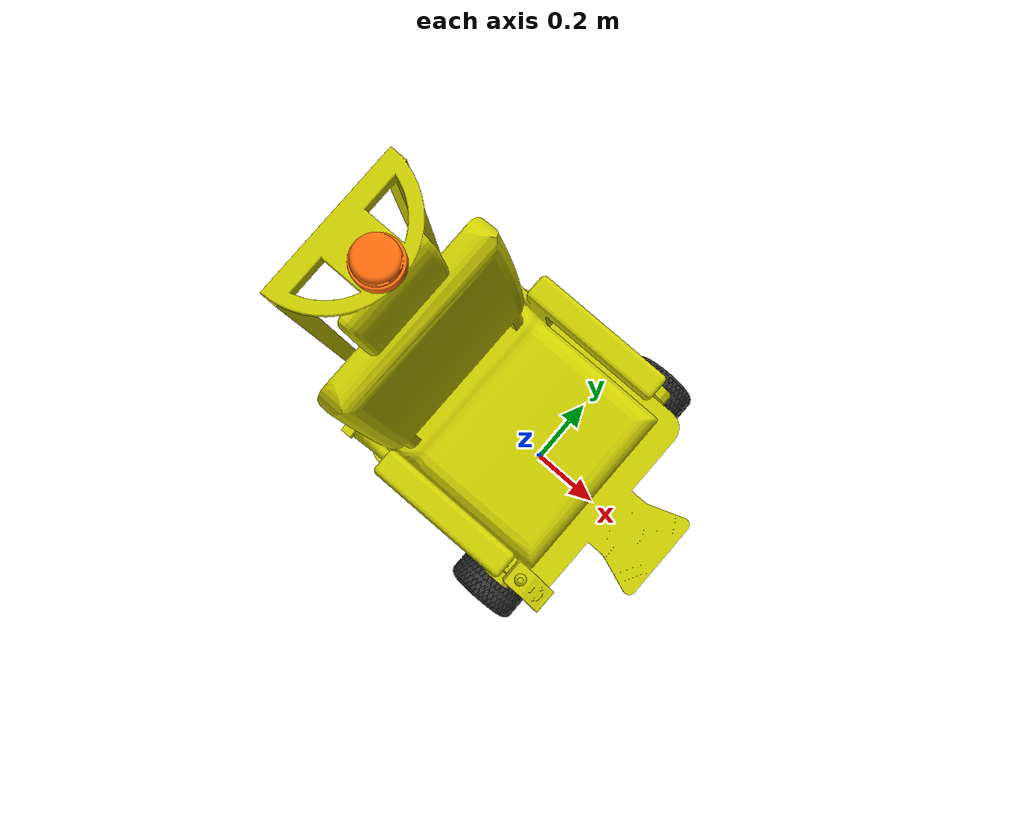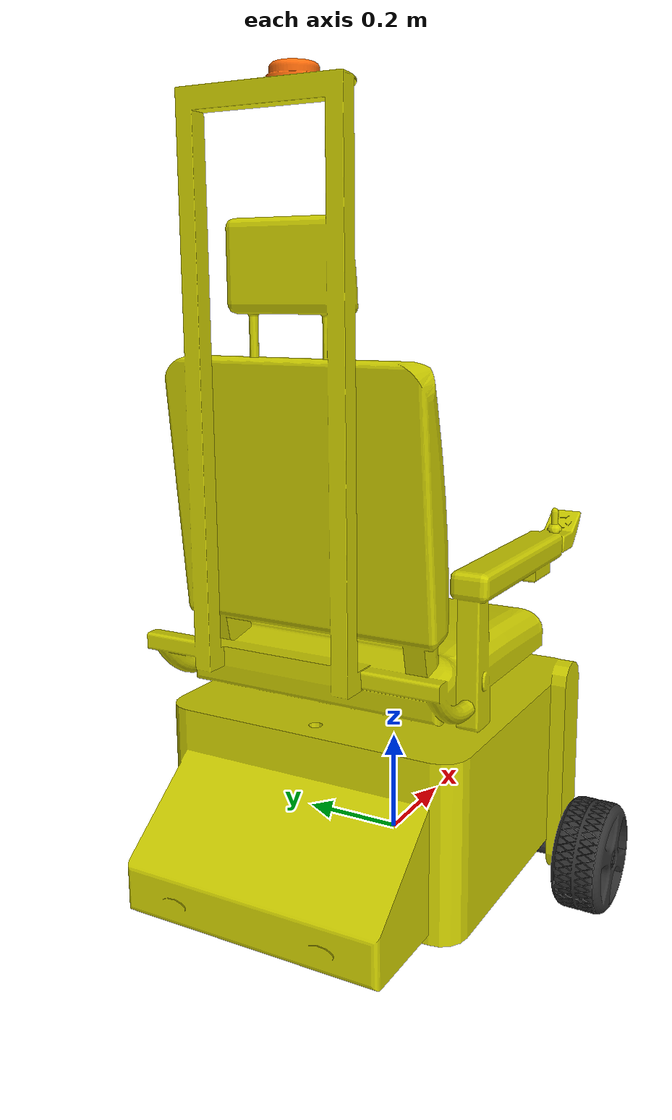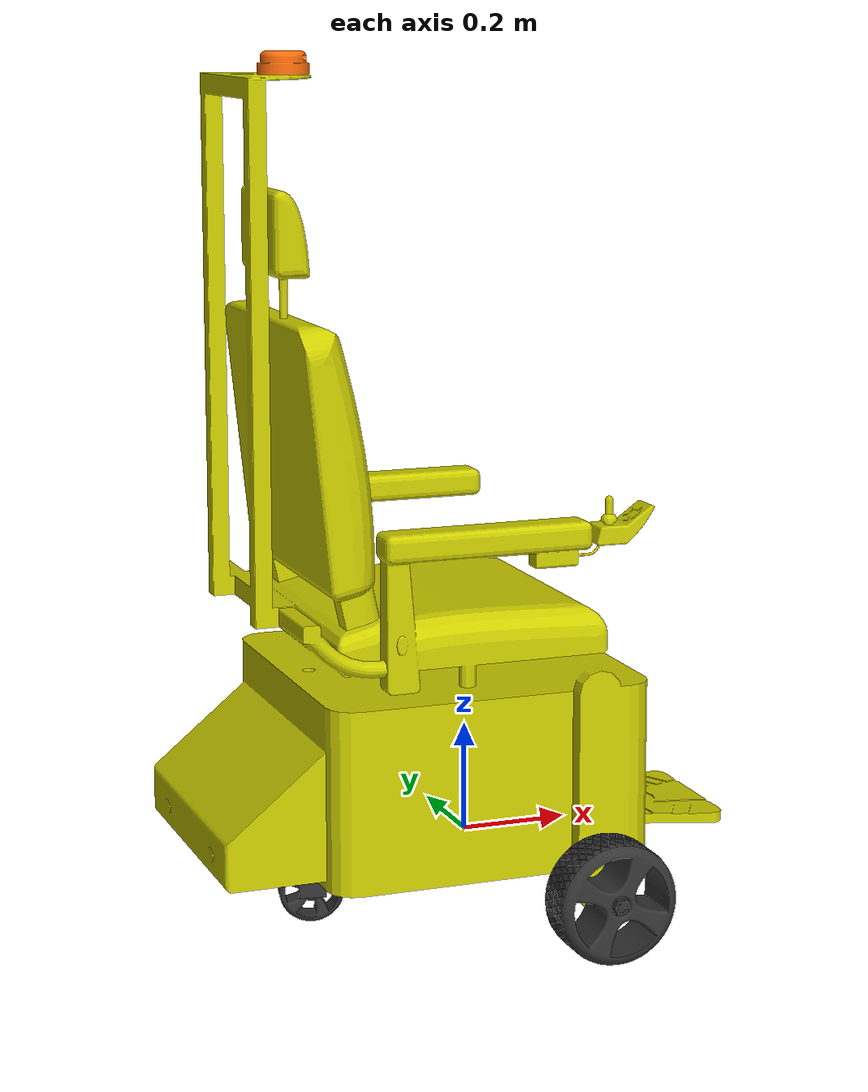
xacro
<?xml version="1.0" encoding="utf-8"?>
<robot name="wheelchair_robot4" xmlns:xacro="http://www.ros.org/wiki/xacro">

	<link name="base_footprint">
   		<visual>
			<geometry>
      				<box size="0.001 0.001 0.001"/>
     	    </geometry>
			<origin rpy="0 0 0" xyz="0 0 0"/>
   		</visual>
                <inertial>
                       <origin xyz="0 0 0"/>
                        <mass value="0.001"/>
                       <inertia ixx="1" ixy="0.0" ixz="0.0"
                                iyy="1" iyz="0.0"
                                izz="1" />
                </inertial>
 	</link>

  <link
    name="base_link">
    <inertial>
      <origin
        xyz="-0.116070367389248 -0.000387460963306548 0.280524449845589"
        rpy="0 0 0" />
      <mass
        value="185.015068554867" />
      <inertia
        ixx="8.51989303392125"
        ixy="0.0245373071358486"
        ixz="0.693279134331001"
        iyy="10.1532644889236"
        iyz="8.82279589272413E-05"
        izz="11.9909793927951" />
    </inertial>
    <visual>
      <origin
        xyz="0 0 0"
        rpy="0 0 0" />
      <geometry>
        <mesh
          filename="package://wheelchair_robot4/meshes/base_link.STL" />
      </geometry>
      <material
        name="Yellow">
        <color
          rgba="0.8 0.8 0 1.0" />
      </material>
    </visual>
    <collision>
      <origin
        xyz="0 0 0"
        rpy="0 0 0" />
      <geometry>
        <mesh
          filename="package://wheelchair_robot4/meshes/base_link.STL" />
      </geometry>
    </collision>
  </link>

 <joint name="base_joint" type="fixed">
      <origin xyz="0 0 0" rpy="0 0 0" />
      <parent link="base_footprint"/>
      <child link="base_link" />
    </joint>

  <link
    name="wheel_fl_link">
    <inertial>
      <origin
        xyz="-1.10061709746034E-10 -0.00337662340413741 5.90574734948834E-10"
        rpy="0 0 0" />
      <mass
        value="2.2843668748185" />
      <inertia
        ixx="0.00965638406952181"
        ixy="-5.03513589196726E-13"
        ixz="-4.98427158296694E-09"
        iyy="0.0146542138938539"
        iyz="-1.93237868171639E-11"
        izz="0.00965636514719424" />
    </inertial>
    <visual>
      <origin
        xyz="0 0 0"
        rpy="0 0 0" />
      <geometry>
        <mesh
          filename="package://wheelchair_robot4/meshes/wheel_fl_link.STL" />
      </geometry>
      <material
        name="Black">
        <color
          rgba="0.2 0.2 0.2 1.0" />
      </material>
    </visual>
    <collision>
      <origin
        xyz="0 0 0"
        rpy="0 0 0" />
      <geometry>
        <mesh
          filename="package://wheelchair_robot4/meshes/wheel_fl_link.STL" />
      </geometry>
    </collision>
  </link>
  <joint
    name="wheel_fl_joint"
    type="continuous">
    <origin
      xyz="0.130073236181598 0.38 -0.03"
      rpy="0 0 0" />
    <parent
      link="base_link" />
    <child
      link="wheel_fl_link" />
    <axis
      xyz="0 1 0" />
  </joint>
  <link
    name="wheel_fr_link">
    <inertial>
      <origin
        xyz="3.98364174980514E-10 0.00337662340409128 -4.3375466413087E-10"
        rpy="0 0 0" />
      <mass
        value="2.28436687482522" />
      <inertia
        ixx="0.00965637368510289"
        ixy="1.45442365575457E-11"
        ixz="1.06538252153203E-08"
        iyy="0.0146542138938664"
        iyz="-1.23759944913488E-11"
        izz="0.00965637553164089" />
    </inertial>
    <visual>
      <origin
        xyz="0 0 0"
        rpy="0 0 0" />
      <geometry>
        <mesh
          filename="package://wheelchair_robot4/meshes/wheel_fr_link.STL" />
      </geometry>
      <material
        name="Black">
        <color
          rgba="0.2 0.2 0.2 1.0" />
      </material>
    </visual>
    <collision>
      <origin
        xyz="0 0 0"
        rpy="0 0 0" />
      <geometry>
        <mesh
          filename="package://wheelchair_robot4/meshes/wheel_fr_link.STL" />
      </geometry>
    </collision>
  </link>
  <joint
    name="wheel_fr_joint"
    type="continuous">
    <origin
      xyz="0.130073236181598 -0.38 -0.03"
      rpy="0 0 0" />
    <parent
      link="base_link" />
    <child
      link="wheel_fr_link" />
    <axis
      xyz="0 1 0" />
  </joint>
  <link
    name="connector_link">
    <inertial>
      <origin
        xyz="3.79357822932747E-10 2.90199943435004E-10 -0.0261782154699899"
        rpy="0 0 0" />
      <mass
        value="0.0667157840715326" />
      <inertia
        ixx="0.000125873890125083"
        ixy="-7.2427836650951E-06"
        ixz="1.21292858455585E-12"
        iyy="9.30667213425711E-05"
        iyz="9.31015843073259E-13"
        izz="5.60950990322276E-05" />
    </inertial>
    <visual>
      <origin
        xyz="0 0 0"
        rpy="0 0 0" />
      <geometry>
        <mesh
          filename="package://wheelchair_robot4/meshes/connector_link.STL" />
      </geometry>
      <material
        name="Black">
        <color
          rgba="0.2 0.2 0.2 1.0" />
      </material>
    </visual>
    <collision>
      <origin
        xyz="0 0 0"
        rpy="0 0 0" />
      <geometry>
        <mesh
          filename="package://wheelchair_robot4/meshes/connector_link.STL" />
      </geometry>
    </collision>
  </link>
  <joint
    name="connector_joint"
    type="continuous">
    <origin
      xyz="-0.299926763818402 0 -0.00399999999999999"
      rpy="0 0 0" />
    <parent
      link="base_link" />
    <child
      link="connector_link" />
    <axis
      xyz="0 0 1" />
  </joint>
  <link
    name="wheel_assist_link">
    <inertial>
      <origin
        xyz="1.26123131077849E-07 4.99185305185699E-07 2.01808293964767E-08"
        rpy="0 0 0" />
      <mass
        value="0.33441726853021" />
      <inertia
        ixx="0.000399871451682161"
        ixy="5.27453105588021E-05"
        ixz="-4.40619053011618E-10"
        iyy="0.000638788721281427"
        iyz="7.73083711774996E-11"
        izz="0.000388744319718542" />
    </inertial>
    <visual>
      <origin
        xyz="0 0 0"
        rpy="0 0 0" />
      <geometry>
        <mesh
          filename="package://wheelchair_robot4/meshes/wheel_assist_link.STL" />
      </geometry>
      <material
        name="Black">
        <color
          rgba="0.2 0.2 0.2 1.0" />
      </material>
    </visual>
    <collision>
      <origin
        xyz="0 0 0"
        rpy="0 0 0" />
      <geometry>
        <mesh
          filename="package://wheelchair_robot4/meshes/wheel_assist_link.STL" />
      </geometry>
    </collision>
  </link>
  <joint
    name="wheel_assist_joint"
    type="continuous">
    <origin
      xyz="0 0 -0.0760000000000001"
      rpy="0 0 0" />
    <parent
      link="connector_link" />
    <child
      link="wheel_assist_link" />
    <axis
      xyz="-0.206402232912239 -0.978467229011193 0" />
  </joint>
  <link
    name="lidar_Link">
    <inertial>
      <origin
        xyz="-0.000772669085365274 -6.79960722208799E-10 7.02576890805329E-05"
        rpy="0 0 0" />
      <mass
        value="0.219753304190073" />
      <inertia
        ixx="0.000127637800597162"
        ixy="1.27214955903226E-11"
        ixz="1.91437962823175E-06"
        iyy="0.000125796747355346"
        iyz="4.28256656148048E-12"
        izz="0.000197877878347455" />
    </inertial>
    <visual>
      <origin
        xyz="0 0 0"
        rpy="0 0 0" />
      <geometry>
        <mesh
          filename="package://wheelchair_robot4/meshes/lidar_Link.STL" />
      </geometry>
      <material
        name="Orange">
        <color
          rgba="${255/255} ${108/255} ${10/255} 1.0" />
      </material>
    </visual>
    <collision>
      <origin
        xyz="0 0 0"
        rpy="0 0 0" />
      <geometry>
        <mesh
          filename="package://wheelchair_robot4/meshes/lidar_Link.STL" />
      </geometry>
    </collision>
  </link>
  <joint
    name="lidar_joint"
    type="fixed">
    <origin
      xyz="-0.334934840795657 0 1.411"
      rpy="0 0 0" />
    <parent
      link="base_link" />
    <child
      link="lidar_Link" />
    <axis
      xyz="0 0 0" />
  </joint>

<gazebo reference="base_link">
     <material>Gazebo/Yellow </material>
    </gazebo>
 <gazebo reference="wheel_fl_link">
     <material>Gazebo/Orange </material>
    </gazebo>
 <gazebo reference="wheel_fr_link">
     <material>Gazebo/Orange </material>
    </gazebo>
 <gazebo reference="wheel_assist_link">
     <material>Gazebo/Blue </material>
    </gazebo>
  <gazebo reference="lidar_Link">
     <material>Gazebo/Red </material>
    </gazebo>

 <!-- Transmission is important to link the joints and the controller -->
 <xacro:macro name="wheel" params="prefix reflect">
        <transmission name="${prefix}_wheel_joint_trans">
            <type>transmission_interface/SimpleTransmission</type>
            <joint name="${prefix}_wheel_joint" >
                <hardwareInterface>hardware_interface/VelocityJointInterface</hardwareInterface>
            </joint>
            <actuator name="${prefix}_wheel_joint_motor">
                <hardwareInterface>hardware_interface/VelocityJointInterface</hardwareInterface>
                <mechanicalReduction>1</mechanicalReduction>
            </actuator>
        </transmission>
    </xacro:macro>

 <wheel prefix="left"  reflect="1"/>
  <wheel prefix="right" reflect="-1"/>

<!-- controller -->
        <gazebo>
            <plugin name="differential_drive_controller"
                    filename="libgazebo_ros_diff_drive.so">
                <rosDebugLevel>Debug</rosDebugLevel>
                <publishWheelTF>true</publishWheelTF>
                <robotNamespace>/</robotNamespace>
                <publishTf>1</publishTf>
                <publishWheelJointState>true</publishWheelJointState>
                <alwaysOn>true</alwaysOn>
                <updateRate>100.0</updateRate>
                <legacyMode>true</legacyMode>
                <leftJoint>wheel_fr_joint</leftJoint>
                <rightJoint>wheel_fl_joint</rightJoint>
                <wheelSeparation>0.76</wheelSeparation>
                <wheelDiameter>0.22</wheelDiameter>
                <broadcastTF>1</broadcastTF>
                <wheelTorque>40</wheelTorque>
                <wheelAcceleration>1.8</wheelAcceleration>
                <commandTopic>cmd_vel</commandTopic>
                <odometryFrame>odom</odometryFrame>
                <odometryTopic>odom</odometryTopic>
                <robotBaseFrame>base_footprint</robotBaseFrame>
            </plugin>
        </gazebo>

</robot>
